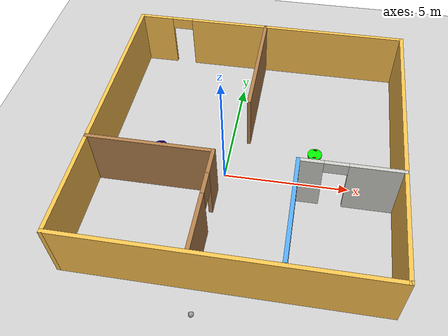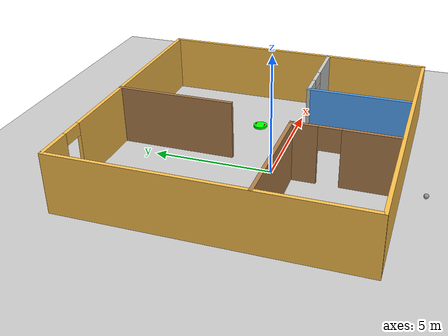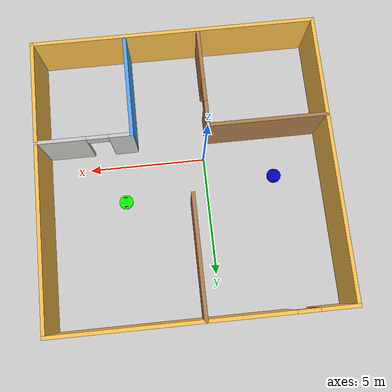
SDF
<sdf version="1.6">
 <world name="default">
  <plugin name="hello_world" filename="libhello_world.so"/>
  <light name="sun" type="directional">
   <pose>0 0 10 0 -0 0</pose>
   <diffuse>0.8 0.8 0.8 1</diffuse>
   <specular>0.1 0.1 0.1 1</specular>
   <attenuation>
    <range>1000</range>
    <constant>0.9</constant>
    <linear>0.01</linear>
    <quadratic>0.001</quadratic>
   </attenuation>
   <direction>-0.5 0.5 -1</direction>
  </light>
  <model name="ground_plane">
   <static>1</static>
   <link name="link">
    <collision name="collision">
     <geometry><plane><normal>0 0 1</normal><size>100 100</size></plane></geometry>
     <surface><friction><ode><mu>100</mu><mu2>50</mu2></ode></friction></surface>
    </collision>
    <visual name="visual">
     <cast_shadows>0</cast_shadows>
     <geometry><plane><normal>0 0 1</normal><size>100 100</size></plane></geometry>
     <material>
      <script><uri>file://media/materials/scripts/gazebo.material</uri><name>Gazebo/Grey</name></script>
     </material>
    </visual>
   </link>
  </model>
  <gravity>0 0 -9.8</gravity>
  <magnetic_field>6e-06 2.3e-05 -4.2e-05</magnetic_field>
  <atmosphere type="adiabatic"/>
  <physics name="default_physics" default="0" type="ode">
   <max_step_size>0.001</max_step_size>
   <real_time_factor>1</real_time_factor>
   <real_time_update_rate>1000</real_time_update_rate>
  </physics>
  <scene><ambient>0.4 0.4 0.4 1</ambient><background>0.7 0.7 0.7 1</background><shadows>1</shadows></scene>
  <spherical_coordinates>
   <surface_model>EARTH_WGS84</surface_model>
   <latitude_deg>0</latitude_deg>
   <longitude_deg>0</longitude_deg>
   <elevation>0</elevation>
   <heading_deg>0</heading_deg>
  </spherical_coordinates>
  <model name="siva_home_0">
   <pose>0.8488 0.866646 0 0 -0 0</pose>
   <link name="Wall_11">
    <collision name="Wall_11_Collision">
     <geometry><box><size>5 0.15 2.5</size></box></geometry>
     <pose>0 0 1.25 0 -0 0</pose>
    </collision>
    <visual name="Wall_11_Visual">
     <pose>0 0 1.25 0 -0 0</pose>
     <geometry><box><size>5 0.15 2.5</size></box></geometry>
     <material>
      <script><uri>file://media/materials/scripts/gazebo.material</uri><name>Gazebo/Wood</name></script>
      <ambient>1 1 1 1</ambient>
     </material>
    </visual>
    <pose>-3.48124 -1.69476 0 0 -0 0</pose>
   </link>
   <link name="Wall_12">
    <pose>-1.05624 -3.74476 0 0 0 -1.5708</pose>
    <visual name="Wall_12_Visual_0">
     <pose>-1.56567 0 1.25 0 -0 0</pose>
     <geometry><box><size>1.11865 0.15 2.5</size></box></geometry>
     <material>
      <script><uri>file://media/materials/scripts/gazebo.material</uri><name>Gazebo/Wood</name></script>
      <ambient>1 1 1 1</ambient>
     </material>
    </visual>
    <collision name="Wall_12_Collision_0">
     <geometry><box><size>1.11865 0.15 2.5</size></box></geometry>
     <pose>-1.56567 0 1.25 0 -0 0</pose>
    </collision>
    <visual name="Wall_12_Visual_1">
     <pose>1.00933 0 1.25 0 -0 0</pose>
     <geometry><box><size>2.23135 0.15 2.5</size></box></geometry>
     <material>
      <script><uri>file://media/materials/scripts/gazebo.material</uri><name>Gazebo/Wood</name></script>
      <ambient>1 1 1 1</ambient>
     </material>
    </visual>
    <collision name="Wall_12_Collision_1">
     <geometry><box><size>2.23135 0.15 2.5</size></box></geometry>
     <pose>1.00933 0 1.25 0 -0 0</pose>
    </collision>
    <visual name="Wall_12_Visual_2">
     <pose>-0.556345 0 2 0 -0 0</pose>
     <geometry><box><size>0.9 0.15 1</size></box></geometry>
     <material>
      <script><uri>file://media/materials/scripts/gazebo.material</uri><name>Gazebo/Wood</name></script>
      <ambient>1 1 1 1</ambient>
     </material>
    </visual>
    <collision name="Wall_12_Collision_2">
     <geometry><box><size>0.9 0.15 1</size></box></geometry>
     <pose>-0.556345 0 2 0 -0 0</pose>
    </collision>
   </link>
   <link name="Wall_22">
    <pose>3.98528 -1.61508 0 0 -0 3.14159</pose>
    <visual name="Wall_22_Visual_0">
     <pose>-0.956941 0 1.25 0 -0 0</pose>
     <geometry><box><size>2.08612 0.15 2.5</size></box></geometry>
     <material>
      <script><uri>file://media/materials/scripts/gazebo.material</uri><name>Gazebo/CeilingTiled</name></script>
      <ambient>1 1 1 1</ambient>
     </material>
    </visual>
    <collision name="Wall_22_Collision_0">
     <geometry><box><size>2.08612 0.15 2.5</size></box></geometry>
     <pose>-0.956941 0 1.25 0 -0 0</pose>
    </collision>
    <visual name="Wall_22_Visual_1">
     <pose>1.49306 0 1.25 0 -0 0</pose>
     <geometry><box><size>1.01388 0.15 2.5</size></box></geometry>
     <material>
      <script><uri>file://media/materials/scripts/gazebo.material</uri><name>Gazebo/CeilingTiled</name></script>
      <ambient>1 1 1 1</ambient>
     </material>
    </visual>
    <collision name="Wall_22_Collision_1">
     <geometry><box><size>1.01388 0.15 2.5</size></box></geometry>
     <pose>1.49306 0 1.25 0 -0 0</pose>
    </collision>
    <visual name="Wall_22_Visual_2">
     <pose>0.536117 0 2.25 0 -0 0</pose>
     <geometry><box><size>0.9 0.15 0.5</size></box></geometry>
     <material>
      <script><uri>file://media/materials/scripts/gazebo.material</uri><name>Gazebo/CeilingTiled</name></script>
      <ambient>1 1 1 1</ambient>
     </material>
    </visual>
    <collision name="Wall_22_Collision_2">
     <geometry><box><size>0.9 0.15 0.5</size></box></geometry>
     <pose>0.536117 0 2.25 0 -0 0</pose>
    </collision>
   </link>
   <link name="Wall_23">
    <collision name="Wall_23_Collision">
     <geometry><box><size>4.3 0.15 2.5</size></box></geometry>
     <pose>0 0 1.25 0 -0 0</pose>
    </collision>
    <visual name="Wall_23_Visual">
     <pose>0 0 1.25 0 -0 0</pose>
     <geometry><box><size>4.3 0.15 2.5</size></box></geometry>
     <material>
      <script><uri>file://media/materials/scripts/gazebo.material</uri><name>Gazebo/Grey</name></script>
      <ambient>0.333333 0.666667 1 1</ambient>
     </material>
    </visual>
    <pose>2.06028 -3.69008 0 0 0 -1.5708</pose>
   </link>
   <link name="Wall_3">
    <pose>0 5.925 0 0 0 -4.1e-05</pose>
    <visual name="Wall_3_Visual_0">
     <pose>-5.23605 0 1.25 0 -0 0</pose>
     <geometry><box><size>1.5279 0.15 2.5</size></box></geometry>
     <material>
      <script><uri>file://media/materials/scripts/gazebo.material</uri><name>Gazebo/Grey</name></script>
      <ambient>1 0.764706 0.305882 1</ambient>
     </material>
    </visual>
    <collision name="Wall_3_Collision_0">
     <geometry><box><size>1.5279 0.15 2.5</size></box></geometry>
     <pose>-5.23605 0 1.25 0 -0 0</pose>
    </collision>
    <visual name="Wall_3_Visual_1">
     <pose>1.21395 0 1.25 0 -0 0</pose>
     <geometry><box><size>9.5721 0.15 2.5</size></box></geometry>
     <material>
      <script><uri>file://media/materials/scripts/gazebo.material</uri><name>Gazebo/Grey</name></script>
      <ambient>1 0.764706 0.305882 1</ambient>
     </material>
    </visual>
    <collision name="Wall_3_Collision_1">
     <geometry><box><size>9.5721 0.15 2.5</size></box></geometry>
     <pose>1.21395 0 1.25 0 -0 0</pose>
    </collision>
    <visual name="Wall_3_Visual_2">
     <pose>-4.0221 0 2.25 0 -0 0</pose>
     <geometry><box><size>0.9 0.15 0.5</size></box></geometry>
     <material>
      <script><uri>file://media/materials/scripts/gazebo.material</uri><name>Gazebo/Grey</name></script>
      <ambient>1 0.764706 0.305882 1</ambient>
     </material>
    </visual>
    <collision name="Wall_3_Collision_2">
     <geometry><box><size>0.9 0.15 0.5</size></box></geometry>
     <pose>-4.0221 0 2.25 0 -0 0</pose>
    </collision>
   </link>
   <link name="Wall_4">
    <collision name="Wall_4_Collision">
     <geometry><box><size>12 0.15 2.5</size></box></geometry>
     <pose>0 0 1.25 0 -0 0</pose>
    </collision>
    <visual name="Wall_4_Visual">
     <pose>0 0 1.25 0 -0 0</pose>
     <geometry><box><size>12 0.15 2.5</size></box></geometry>
     <material>
      <script><uri>file://media/materials/scripts/gazebo.material</uri><name>Gazebo/Grey</name></script>
      <ambient>1 0.764706 0.305882 1</ambient>
     </material>
    </visual>
    <pose>5.92524 -0.000244 0 0 0 -1.5708</pose>
   </link>
   <link name="Wall_5">
    <collision name="Wall_5_Collision">
     <geometry><box><size>12 0.15 2.5</size></box></geometry>
     <pose>0 0 1.25 0 -0 0</pose>
    </collision>
    <visual name="Wall_5_Visual">
     <pose>0 0 1.25 0 -0 0</pose>
     <geometry><box><size>12 0.15 2.5</size></box></geometry>
     <material>
      <script><uri>file://media/materials/scripts/gazebo.material</uri><name>Gazebo/Grey</name></script>
      <ambient>1 0.764706 0.305882 1</ambient>
     </material>
    </visual>
    <pose>0 -5.925 0 0 -0 3.14155</pose>
   </link>
   <link name="Wall_6">
    <collision name="Wall_6_Collision">
     <geometry><box><size>12 0.15 2.5</size></box></geometry>
     <pose>0 0 1.25 0 -0 0</pose>
    </collision>
    <visual name="Wall_6_Visual">
     <pose>0 0 1.25 0 -0 0</pose>
     <geometry><box><size>12 0.15 2.5</size></box></geometry>
     <material>
      <script><uri>file://media/materials/scripts/gazebo.material</uri><name>Gazebo/Grey</name></script>
      <ambient>1 0.764706 0.305882 1</ambient>
     </material>
    </visual>
    <pose>-5.92524 0.000244 0 0 -0 1.5708</pose>
   </link>
   <link name="Wall_8">
    <collision name="Wall_8_Collision">
     <geometry><box><size>5 0.15 2.5</size></box></geometry>
     <pose>0 0 1.25 0 -0 0</pose>
    </collision>
    <visual name="Wall_8_Visual">
     <pose>0 0 1.25 0 -0 0</pose>
     <geometry><box><size>5 0.15 2.5</size></box></geometry>
     <material>
      <script><uri>file://media/materials/scripts/gazebo.material</uri><name>Gazebo/Wood</name></script>
      <ambient>1 1 1 1</ambient>
     </material>
    </visual>
    <pose>-0.154861 3.48364 0 0 0 -1.5708</pose>
   </link>
   <static>1</static>
  </model>
  <model name="sivarobo_1">
   <link name="link_0">
    <pose>-0.05 -0 0.01875 0 -0 0</pose>
    <inertial>
     <mass>1</mass>
     <inertia><ixx>0.145833</ixx><ixy>0</ixy><ixz>0</ixz><iyy>0.145833</iyy><iyz>0</iyz><izz>0.125</izz></inertia>
    </inertial>
    <visual name="visual">
     <geometry><cylinder><radius>0.3</radius><length>0.1</length></cylinder></geometry>
     <material>
      <lighting>1</lighting>
      <script><uri>file://media/materials/scripts/gazebo.material</uri><name>Gazebo/Grey</name></script>
      <ambient>0.3 0.3 0.3 1</ambient>
      <diffuse>0 1 0 1</diffuse>
      <specular>0.01 0.01 0.01 1</specular>
      <emissive>0 0 0 1</emissive>
      <shader type="vertex"><normal_map>__default__</normal_map></shader>
     </material>
    </visual>
    <collision name="collision">
     <geometry><cylinder><radius>0.3</radius><length>0.1</length></cylinder></geometry>
     <surface>
      <friction>
       <ode><mu>1</mu><mu2>1</mu2><fdir1>0 0 0</fdir1><slip1>0</slip1><slip2>0</slip2></ode>
       <torsional>
        <coefficient>1</coefficient>
        <patch_radius>0</patch_radius>
        <surface_radius>0</surface_radius>
        <use_patch_radius>1</use_patch_radius>
        <ode><slip>0</slip></ode>
       </torsional>
      </friction>
      <bounce><restitution_coefficient>0</restitution_coefficient><threshold>1e+06</threshold></bounce>
      <contact>
       <collide_without_contact>0</collide_without_contact>
       <collide_without_contact_bitmask>1</collide_without_contact_bitmask>
       <collide_bitmask>1</collide_bitmask>
       <ode>
        <soft_cfm>0</soft_cfm>
        <soft_erp>0.2</soft_erp>
        <kp>1e+13</kp>
        <kd>1</kd>
        <max_vel>0.01</max_vel>
        <min_depth>0</min_depth>
       </ode>
       <bullet>
        <split_impulse>1</split_impulse>
        <split_impulse_penetration_threshold>-0.01</split_impulse_penetration_threshold>
        <soft_cfm>0</soft_cfm>
        <soft_erp>0.2</soft_erp>
        <kp>1e+13</kp>
        <kd>1</kd>
       </bullet>
      </contact>
     </surface>
    </collision>
   </link>
   <link name="link_2">
    <pose>-0.05 -0.2 0.01875 1.5707 -0 0</pose>
    <inertial>
     <mass>1</mass>
     <inertia><ixx>0.145833</ixx><ixy>0</ixy><ixz>0</ixz><iyy>0.145833</iyy><iyz>0</iyz><izz>0.125</izz></inertia>
    </inertial>
    <visual name="visual">
     <geometry><cylinder><radius>0.1</radius><length>0.02</length></cylinder></geometry>
     <material>
      <lighting>1</lighting>
      <script><uri>file://media/materials/scripts/gazebo.material</uri><name>Gazebo/Grey</name></script>
      <ambient>0.3 0.3 0.3 1</ambient>
      <diffuse>1 0 0 1</diffuse>
      <specular>0.01 0.01 0.01 1</specular>
      <emissive>0 0 0 1</emissive>
      <shader type="vertex"><normal_map>__default__</normal_map></shader>
     </material>
    </visual>
    <collision name="collision">
     <geometry><cylinder><radius>0.1</radius><length>0.02</length></cylinder></geometry>
     <surface>
      <friction>
       <ode><mu>1</mu><mu2>1</mu2><fdir1>0 0 0</fdir1><slip1>0</slip1><slip2>0</slip2></ode>
       <torsional>
        <coefficient>1</coefficient>
        <patch_radius>0</patch_radius>
        <surface_radius>0</surface_radius>
        <use_patch_radius>1</use_patch_radius>
        <ode><slip>0</slip></ode>
       </torsional>
      </friction>
      <bounce><restitution_coefficient>0</restitution_coefficient><threshold>1e+06</threshold></bounce>
      <contact>
       <collide_without_contact>0</collide_without_contact>
       <collide_without_contact_bitmask>1</collide_without_contact_bitmask>
       <collide_bitmask>1</collide_bitmask>
       <ode>
        <soft_cfm>0</soft_cfm>
        <soft_erp>0.2</soft_erp>
        <kp>1e+13</kp>
        <kd>1</kd>
        <max_vel>0.01</max_vel>
        <min_depth>0</min_depth>
       </ode>
       <bullet>
        <split_impulse>1</split_impulse>
        <split_impulse_penetration_threshold>-0.01</split_impulse_penetration_threshold>
        <soft_cfm>0</soft_cfm>
        <soft_erp>0.2</soft_erp>
        <kp>1e+13</kp>
        <kd>1</kd>
       </bullet>
      </contact>
     </surface>
    </collision>
   </link>
   <link name="link_2_clone">
    <pose>-0.05 0.2 0.01875 1.5707 -0 0</pose>
    <inertial>
     <mass>1</mass>
     <inertia><ixx>0.145833</ixx><ixy>0</ixy><ixz>0</ixz><iyy>0.145833</iyy><iyz>0</iyz><izz>0.125</izz></inertia>
    </inertial>
    <visual name="visual">
     <geometry><cylinder><radius>0.1</radius><length>0.02</length></cylinder></geometry>
     <material>
      <lighting>1</lighting>
      <script><uri>file://media/materials/scripts/gazebo.material</uri><name>Gazebo/Grey</name></script>
      <ambient>0.3 0.3 0.3 1</ambient>
      <diffuse>1 0 0 1</diffuse>
      <specular>0.01 0.01 0.01 1</specular>
      <emissive>0 0 0 1</emissive>
      <shader type="vertex"><normal_map>__default__</normal_map></shader>
     </material>
    </visual>
    <collision name="collision">
     <geometry><cylinder><radius>0.1</radius><length>0.02</length></cylinder></geometry>
     <surface>
      <friction>
       <ode><mu>1</mu><mu2>1</mu2><fdir1>0 0 0</fdir1><slip1>0</slip1><slip2>0</slip2></ode>
       <torsional>
        <coefficient>1</coefficient>
        <patch_radius>0</patch_radius>
        <surface_radius>0</surface_radius>
        <use_patch_radius>1</use_patch_radius>
        <ode><slip>0</slip></ode>
       </torsional>
      </friction>
      <bounce><restitution_coefficient>0</restitution_coefficient><threshold>1e+06</threshold></bounce>
      <contact>
       <collide_without_contact>0</collide_without_contact>
       <collide_without_contact_bitmask>1</collide_without_contact_bitmask>
       <collide_bitmask>1</collide_bitmask>
       <ode>
        <soft_cfm>0</soft_cfm>
        <soft_erp>0.2</soft_erp>
        <kp>1e+13</kp>
        <kd>1</kd>
        <max_vel>0.01</max_vel>
        <min_depth>0</min_depth>
       </ode>
       <bullet>
        <split_impulse>1</split_impulse>
        <split_impulse_penetration_threshold>-0.01</split_impulse_penetration_threshold>
        <soft_cfm>0</soft_cfm>
        <soft_erp>0.2</soft_erp>
        <kp>1e+13</kp>
        <kd>1</kd>
       </bullet>
      </contact>
     </surface>
    </collision>
   </link>
   <link name="link_3">
    <pose>0.15 0 -0.05625 0 -0 0</pose>
    <inertial>
     <mass>1</mass>
     <inertia><ixx>0.1</ixx><ixy>0</ixy><ixz>0</ixz><iyy>0.1</iyy><iyz>0</iyz><izz>0.1</izz></inertia>
    </inertial>
    <visual name="visual">
     <geometry><sphere><radius>0.025</radius></sphere></geometry>
     <material>
      <lighting>1</lighting>
      <script><uri>file://media/materials/scripts/gazebo.material</uri><name>Gazebo/Grey</name></script>
      <ambient>0.3 0.3 0.3 1</ambient>
      <diffuse>0.7 0.7 0.7 1</diffuse>
      <specular>0.01 0.01 0.01 1</specular>
      <emissive>0 0 0 1</emissive>
      <shader type="vertex"><normal_map>__default__</normal_map></shader>
     </material>
    </visual>
    <collision name="collision">
     <geometry><sphere><radius>0.025</radius></sphere></geometry>
     <surface>
      <friction>
       <ode><mu>1</mu><mu2>1</mu2><fdir1>0 0 0</fdir1><slip1>0</slip1><slip2>0</slip2></ode>
       <torsional>
        <coefficient>1</coefficient>
        <patch_radius>0</patch_radius>
        <surface_radius>0</surface_radius>
        <use_patch_radius>1</use_patch_radius>
        <ode><slip>0</slip></ode>
       </torsional>
      </friction>
      <bounce><restitution_coefficient>0</restitution_coefficient><threshold>1e+06</threshold></bounce>
      <contact>
       <collide_without_contact>0</collide_without_contact>
       <collide_without_contact_bitmask>1</collide_without_contact_bitmask>
       <collide_bitmask>1</collide_bitmask>
       <ode>
        <soft_cfm>0</soft_cfm>
        <soft_erp>0.2</soft_erp>
        <kp>1e+13</kp>
        <kd>1</kd>
        <max_vel>0.01</max_vel>
        <min_depth>0</min_depth>
       </ode>
       <bullet>
        <split_impulse>1</split_impulse>
        <split_impulse_penetration_threshold>-0.01</split_impulse_penetration_threshold>
        <soft_cfm>0</soft_cfm>
        <soft_erp>0.2</soft_erp>
        <kp>1e+13</kp>
        <kd>1</kd>
       </bullet>
      </contact>
     </surface>
    </collision>
   </link>
   <joint name="Joint_1" type="revolute">
    <parent>link_0</parent>
    <child>link_2</child>
    <axis>
     <xyz>0 0 1</xyz>
     <use_parent_model_frame>0</use_parent_model_frame>
     <limit>
      <lower>-1.79769e+308</lower>
      <upper>1.79769e+308</upper>
      <effort>-1</effort>
      <velocity>-1</velocity>
     </limit>
     <dynamics>
      <spring_reference>0</spring_reference>
      <spring_stiffness>0</spring_stiffness>
      <damping>0</damping>
      <friction>0</friction>
     </dynamics>
    </axis>
    <physics>
     <ode><limit><cfm>0</cfm><erp>0.2</erp></limit><suspension><cfm>0</cfm><erp>0.2</erp></suspension></ode>
    </physics>
   </joint>
   <joint name="Joint_2" type="revolute">
    <parent>link_0</parent>
    <child>link_2_clone</child>
    <axis>
     <xyz>0 0 1</xyz>
     <use_parent_model_frame>0</use_parent_model_frame>
     <limit>
      <lower>-1.79769e+308</lower>
      <upper>1.79769e+308</upper>
      <effort>-1</effort>
      <velocity>-1</velocity>
     </limit>
     <dynamics>
      <spring_reference>0</spring_reference>
      <spring_stiffness>0</spring_stiffness>
      <damping>0</damping>
      <friction>0</friction>
     </dynamics>
    </axis>
    <physics>
     <ode><limit><cfm>0</cfm><erp>0.2</erp></limit><suspension><cfm>0</cfm><erp>0.2</erp></suspension></ode>
    </physics>
   </joint>
   <joint name="caster_joint" type="ball">
    <parent>link_0</parent>
    <child>link_3</child>
    <physics>
     <ode><limit><cfm>0</cfm><erp>0.2</erp></limit><suspension><cfm>0</cfm><erp>0.2</erp></suspension></ode>
    </physics>
   </joint>
   <static>0</static>
   <pose>3.59605 1.56175 0.08125 -3e-06 2e-06 -0.017454</pose>
  </model>
  <model name="sivarobo_2">
   <link name="link_0">
    <pose>-0.05 -0 0.01875 0 -0 0</pose>
    <inertial>
     <mass>1</mass>
     <inertia><ixx>0.145833</ixx><ixy>0</ixy><ixz>0</ixz><iyy>0.145833</iyy><iyz>0</iyz><izz>0.125</izz></inertia>
    </inertial>
    <visual name="visual">
     <geometry><cylinder><radius>0.3</radius><length>0.1</length></cylinder></geometry>
     <material>
      <lighting>1</lighting>
      <script><uri>file://media/materials/scripts/gazebo.material</uri><name>Gazebo/Grey</name></script>
      <ambient>0.3 0.3 0.3 1</ambient>
      <diffuse>0 0 0.75 1</diffuse>
      <specular>0.01 0.01 0.01 1</specular>
      <emissive>0 0 0 1</emissive>
      <shader type="vertex"><normal_map>__default__</normal_map></shader>
     </material>
    </visual>
    <collision name="collision">
     <geometry><cylinder><radius>0.3</radius><length>0.1</length></cylinder></geometry>
     <surface>
      <friction>
       <ode><mu>1</mu><mu2>1</mu2><fdir1>0 0 0</fdir1><slip1>0</slip1><slip2>0</slip2></ode>
       <torsional>
        <coefficient>1</coefficient>
        <patch_radius>0</patch_radius>
        <surface_radius>0</surface_radius>
        <use_patch_radius>1</use_patch_radius>
        <ode><slip>0</slip></ode>
       </torsional>
      </friction>
      <bounce><restitution_coefficient>0</restitution_coefficient><threshold>1e+06</threshold></bounce>
      <contact>
       <collide_without_contact>0</collide_without_contact>
       <collide_without_contact_bitmask>1</collide_without_contact_bitmask>
       <collide_bitmask>1</collide_bitmask>
       <ode>
        <soft_cfm>0</soft_cfm>
        <soft_erp>0.2</soft_erp>
        <kp>1e+13</kp>
        <kd>1</kd>
        <max_vel>0.01</max_vel>
        <min_depth>0</min_depth>
       </ode>
       <bullet>
        <split_impulse>1</split_impulse>
        <split_impulse_penetration_threshold>-0.01</split_impulse_penetration_threshold>
        <soft_cfm>0</soft_cfm>
        <soft_erp>0.2</soft_erp>
        <kp>1e+13</kp>
        <kd>1</kd>
       </bullet>
      </contact>
     </surface>
    </collision>
   </link>
   <link name="link_2">
    <pose>-0.05 -0.2 0.01875 1.5707 -0 0</pose>
    <inertial>
     <mass>1</mass>
     <inertia><ixx>0.145833</ixx><ixy>0</ixy><ixz>0</ixz><iyy>0.145833</iyy><iyz>0</iyz><izz>0.125</izz></inertia>
    </inertial>
    <visual name="visual">
     <geometry><cylinder><radius>0.1</radius><length>0.02</length></cylinder></geometry>
     <material>
      <lighting>1</lighting>
      <script><uri>file://media/materials/scripts/gazebo.material</uri><name>Gazebo/Grey</name></script>
      <ambient>1 0 0 1</ambient>
      <diffuse>0.7 0.7 0.7 1</diffuse>
      <specular>0.01 0.01 0.01 1</specular>
      <emissive>0 0 0 1</emissive>
      <shader type="vertex"><normal_map>__default__</normal_map></shader>
     </material>
    </visual>
    <collision name="collision">
     <geometry><cylinder><radius>0.1</radius><length>0.02</length></cylinder></geometry>
     <surface>
      <friction>
       <ode><mu>1</mu><mu2>1</mu2><fdir1>0 0 0</fdir1><slip1>0</slip1><slip2>0</slip2></ode>
       <torsional>
        <coefficient>1</coefficient>
        <patch_radius>0</patch_radius>
        <surface_radius>0</surface_radius>
        <use_patch_radius>1</use_patch_radius>
        <ode><slip>0</slip></ode>
       </torsional>
      </friction>
      <bounce><restitution_coefficient>0</restitution_coefficient><threshold>1e+06</threshold></bounce>
      <contact>
       <collide_without_contact>0</collide_without_contact>
       <collide_without_contact_bitmask>1</collide_without_contact_bitmask>
       <collide_bitmask>1</collide_bitmask>
       <ode>
        <soft_cfm>0</soft_cfm>
        <soft_erp>0.2</soft_erp>
        <kp>1e+13</kp>
        <kd>1</kd>
        <max_vel>0.01</max_vel>
        <min_depth>0</min_depth>
       </ode>
       <bullet>
        <split_impulse>1</split_impulse>
        <split_impulse_penetration_threshold>-0.01</split_impulse_penetration_threshold>
        <soft_cfm>0</soft_cfm>
        <soft_erp>0.2</soft_erp>
        <kp>1e+13</kp>
        <kd>1</kd>
       </bullet>
      </contact>
     </surface>
    </collision>
   </link>
   <link name="link_2_clone">
    <pose>-0.05 0.2 0.01875 1.5707 -0 0</pose>
    <inertial>
     <mass>1</mass>
     <inertia><ixx>0.145833</ixx><ixy>0</ixy><ixz>0</ixz><iyy>0.145833</iyy><iyz>0</iyz><izz>0.125</izz></inertia>
    </inertial>
    <visual name="visual">
     <geometry><cylinder><radius>0.1</radius><length>0.02</length></cylinder></geometry>
     <material>
      <lighting>1</lighting>
      <script><uri>file://media/materials/scripts/gazebo.material</uri><name>Gazebo/Grey</name></script>
      <ambient>1 0 0 1</ambient>
      <diffuse>0.7 0.7 0.7 1</diffuse>
      <specular>0.01 0.01 0.01 1</specular>
      <emissive>0 0 0 1</emissive>
      <shader type="vertex"><normal_map>__default__</normal_map></shader>
     </material>
    </visual>
    <collision name="collision">
     <geometry><cylinder><radius>0.1</radius><length>0.02</length></cylinder></geometry>
     <surface>
      <friction>
       <ode><mu>1</mu><mu2>1</mu2><fdir1>0 0 0</fdir1><slip1>0</slip1><slip2>0</slip2></ode>
       <torsional>
        <coefficient>1</coefficient>
        <patch_radius>0</patch_radius>
        <surface_radius>0</surface_radius>
        <use_patch_radius>1</use_patch_radius>
        <ode><slip>0</slip></ode>
       </torsional>
      </friction>
      <bounce><restitution_coefficient>0</restitution_coefficient><threshold>1e+06</threshold></bounce>
      <contact>
       <collide_without_contact>0</collide_without_contact>
       <collide_without_contact_bitmask>1</collide_without_contact_bitmask>
       <collide_bitmask>1</collide_bitmask>
       <ode>
        <soft_cfm>0</soft_cfm>
        <soft_erp>0.2</soft_erp>
        <kp>1e+13</kp>
        <kd>1</kd>
        <max_vel>0.01</max_vel>
        <min_depth>0</min_depth>
       </ode>
       <bullet>
        <split_impulse>1</split_impulse>
        <split_impulse_penetration_threshold>-0.01</split_impulse_penetration_threshold>
        <soft_cfm>0</soft_cfm>
        <soft_erp>0.2</soft_erp>
        <kp>1e+13</kp>
        <kd>1</kd>
       </bullet>
      </contact>
     </surface>
    </collision>
   </link>
   <link name="link_3">
    <pose>0.15 0 -0.05625 0 -0 0</pose>
    <inertial>
     <mass>1</mass>
     <inertia><ixx>0.1</ixx><ixy>0</ixy><ixz>0</ixz><iyy>0.1</iyy><iyz>0</iyz><izz>0.1</izz></inertia>
    </inertial>
    <visual name="visual">
     <geometry><sphere><radius>0.025</radius></sphere></geometry>
     <material>
      <lighting>1</lighting>
      <script><uri>file://media/materials/scripts/gazebo.material</uri><name>Gazebo/Grey</name></script>
      <ambient>0.3 0.3 0.3 1</ambient>
      <diffuse>0.7 0.7 0.7 1</diffuse>
      <specular>0.01 0.01 0.01 1</specular>
      <emissive>0 0 0 1</emissive>
      <shader type="vertex"><normal_map>__default__</normal_map></shader>
     </material>
    </visual>
    <collision name="collision">
     <geometry><sphere><radius>0.025</radius></sphere></geometry>
     <surface>
      <friction>
       <ode><mu>1</mu><mu2>1</mu2><fdir1>0 0 0</fdir1><slip1>0</slip1><slip2>0</slip2></ode>
       <torsional>
        <coefficient>1</coefficient>
        <patch_radius>0</patch_radius>
        <surface_radius>0</surface_radius>
        <use_patch_radius>1</use_patch_radius>
        <ode><slip>0</slip></ode>
       </torsional>
      </friction>
      <bounce><restitution_coefficient>0</restitution_coefficient><threshold>1e+06</threshold></bounce>
      <contact>
       <collide_without_contact>0</collide_without_contact>
       <collide_without_contact_bitmask>1</collide_without_contact_bitmask>
       <collide_bitmask>1</collide_bitmask>
       <ode>
        <soft_cfm>0</soft_cfm>
        <soft_erp>0.2</soft_erp>
        <kp>1e+13</kp>
        <kd>1</kd>
        <max_vel>0.01</max_vel>
        <min_depth>0</min_depth>
       </ode>
       <bullet>
        <split_impulse>1</split_impulse>
        <split_impulse_penetration_threshold>-0.01</split_impulse_penetration_threshold>
        <soft_cfm>0</soft_cfm>
        <soft_erp>0.2</soft_erp>
        <kp>1e+13</kp>
        <kd>1</kd>
       </bullet>
      </contact>
     </surface>
    </collision>
   </link>
   <joint name="Joint_1" type="revolute">
    <parent>link_0</parent>
    <child>link_2</child>
    <axis>
     <xyz>0 0 1</xyz>
     <use_parent_model_frame>0</use_parent_model_frame>
     <limit>
      <lower>-1.79769e+308</lower>
      <upper>1.79769e+308</upper>
      <effort>-1</effort>
      <velocity>-1</velocity>
     </limit>
     <dynamics>
      <spring_reference>0</spring_reference>
      <spring_stiffness>0</spring_stiffness>
      <damping>0</damping>
      <friction>0</friction>
     </dynamics>
    </axis>
    <physics>
     <ode><limit><cfm>0</cfm><erp>0.2</erp></limit><suspension><cfm>0</cfm><erp>0.2</erp></suspension></ode>
    </physics>
   </joint>
   <joint name="Joint_2" type="revolute">
    <parent>link_0</parent>
    <child>link_2_clone</child>
    <axis>
     <xyz>0 0 1</xyz>
     <use_parent_model_frame>0</use_parent_model_frame>
     <limit>
      <lower>-1.79769e+308</lower>
      <upper>1.79769e+308</upper>
      <effort>-1</effort>
      <velocity>-1</velocity>
     </limit>
     <dynamics>
      <spring_reference>0</spring_reference>
      <spring_stiffness>0</spring_stiffness>
      <damping>0</damping>
      <friction>0</friction>
     </dynamics>
    </axis>
    <physics>
     <ode><limit><cfm>0</cfm><erp>0.2</erp></limit><suspension><cfm>0</cfm><erp>0.2</erp></suspension></ode>
    </physics>
   </joint>
   <joint name="caster_joint" type="ball">
    <parent>link_0</parent>
    <child>link_3</child>
    <physics>
     <ode><limit><cfm>0</cfm><erp>0.2</erp></limit><suspension><cfm>0</cfm><erp>0.2</erp></suspension></ode>
    </physics>
   </joint>
   <static>0</static>
   <pose>-2.93013 1.01767 0.081252 -8e-06 1.3e-05 -0.030767</pose>
  </model>
  <model name="white_ball">
   <link name="link_1">
    <inertial>
     <mass>1</mass>
     <inertia><ixx>0.1</ixx><ixy>0</ixy><ixz>0</ixz><iyy>0.1</iyy><iyz>0</iyz><izz>0.1</izz></inertia>
    </inertial>
    <visual name="visual">
     <geometry><sphere><radius>0.1</radius></sphere></geometry>
     <material>
      <lighting>1</lighting>
      <script><uri>file://media/materials/scripts/gazebo.material</uri><name>Gazebo/Grey</name></script>
      <shader type="pixel"><normal_map>__default__</normal_map></shader>
      <ambient>1 1 1 1</ambient>
      <diffuse>1 1 1 1</diffuse>
      <specular>1 1 1 1</specular>
      <emissive>1 1 1 1</emissive>
     </material>
    </visual>
    <collision name="collision">
     <geometry><sphere><radius>0.1</radius></sphere></geometry>
     <surface>
      <friction>
       <ode><mu>1</mu><mu2>1</mu2><fdir1>0 0 0</fdir1><slip1>0</slip1><slip2>0</slip2></ode>
       <torsional>
        <coefficient>1</coefficient>
        <patch_radius>0</patch_radius>
        <surface_radius>0</surface_radius>
        <use_patch_radius>1</use_patch_radius>
        <ode><slip>0</slip></ode>
       </torsional>
      </friction>
      <bounce><restitution_coefficient>0</restitution_coefficient><threshold>1e+06</threshold></bounce>
      <contact>
       <collide_without_contact>0</collide_without_contact>
       <collide_without_contact_bitmask>1</collide_without_contact_bitmask>
       <collide_bitmask>1</collide_bitmask>
       <ode>
        <soft_cfm>0</soft_cfm>
        <soft_erp>0.2</soft_erp>
        <kp>1e+13</kp>
        <kd>1</kd>
        <max_vel>0.01</max_vel>
        <min_depth>0</min_depth>
       </ode>
       <bullet>
        <split_impulse>1</split_impulse>
        <split_impulse_penetration_threshold>-0.01</split_impulse_penetration_threshold>
        <soft_cfm>0</soft_cfm>
        <soft_erp>0.2</soft_erp>
        <kp>1e+13</kp>
        <kd>1</kd>
       </bullet>
      </contact>
     </surface>
    </collision>
   </link>
   <static>0</static>
   <pose>-0.026916 -6.06651 0.1 0 -0 0</pose>
  </model>
 </world>
</sdf>
